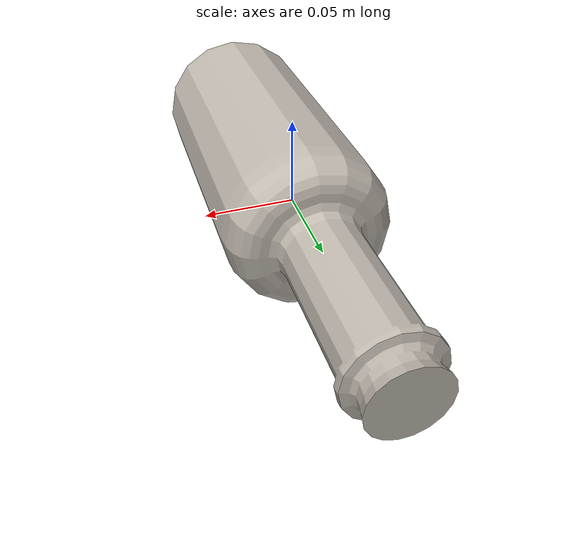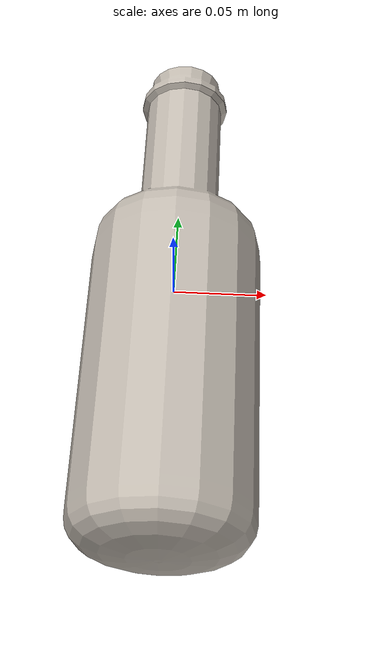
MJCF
<mujoco model="vase_556bcb16">
  <compiler angle="radian"/>
  <asset>
    <texture type="2d" name="vase_556bcb16_tex" file="vase_556bcb16_visual_0.png"/>
    <material name="vase_556bcb16_mat" texture="vase_556bcb16_tex"/>
    <mesh name="vase_556bcb16_visual" content_type="model/obj" file="vase_556bcb16_visual.obj" scale="-1 1.00098 1"/>
    <mesh name="vase_556bcb16_c0" content_type="model/obj" file="vase_556bcb16_c0.obj" scale="-1 1.00098 1"/>
    <mesh name="vase_556bcb16_c1" content_type="model/obj" file="vase_556bcb16_c1.obj" scale="-1 1.00098 1"/>
  </asset>
  <worldbody>
    <body name="vase_556bcb16">
      <freejoint/>
      <geom name="vase_556bcb16_visual" type="mesh" mesh="vase_556bcb16_visual" mass="1e-8" contype="0" conaffinity="0" group="2" material="vase_556bcb16_mat"/>
      <geom name="vase_556bcb16_c0" type="mesh" mesh="vase_556bcb16_c0" group="3" density="353.921" friction="0.9 0.05 0.005" condim="4" rgba="0.4 0.5 0.9 0.35"/>
      <geom name="vase_556bcb16_c1" type="mesh" mesh="vase_556bcb16_c1" group="3" density="353.921" friction="0.9 0.05 0.005" condim="4" rgba="0.4 0.5 0.9 0.35"/>
    </body>
  </worldbody>
</mujoco>
